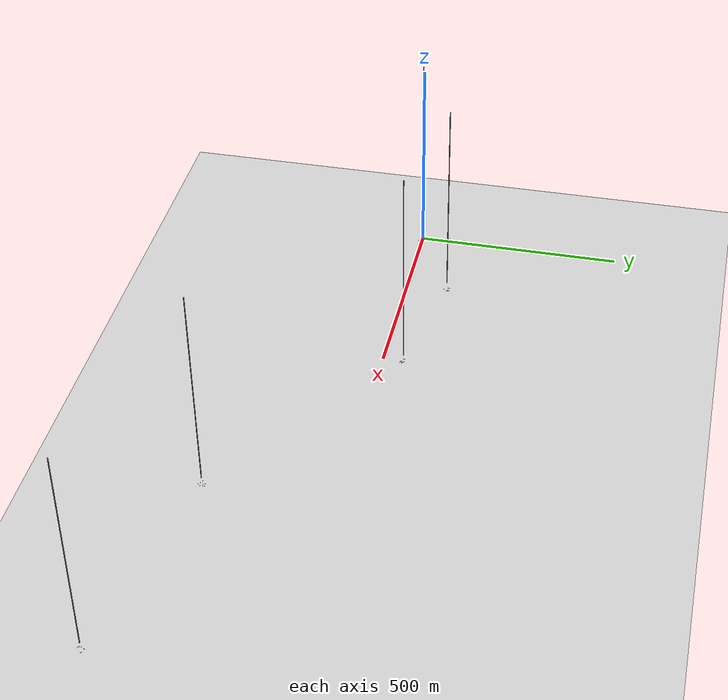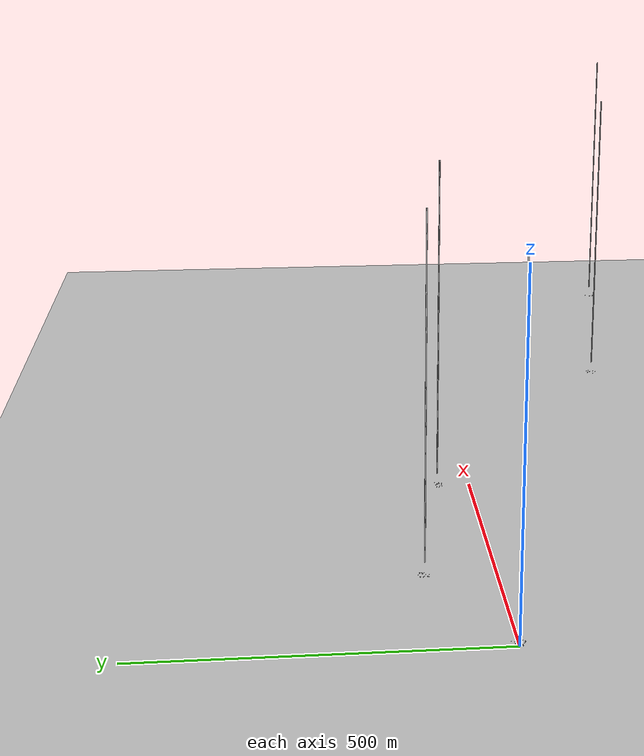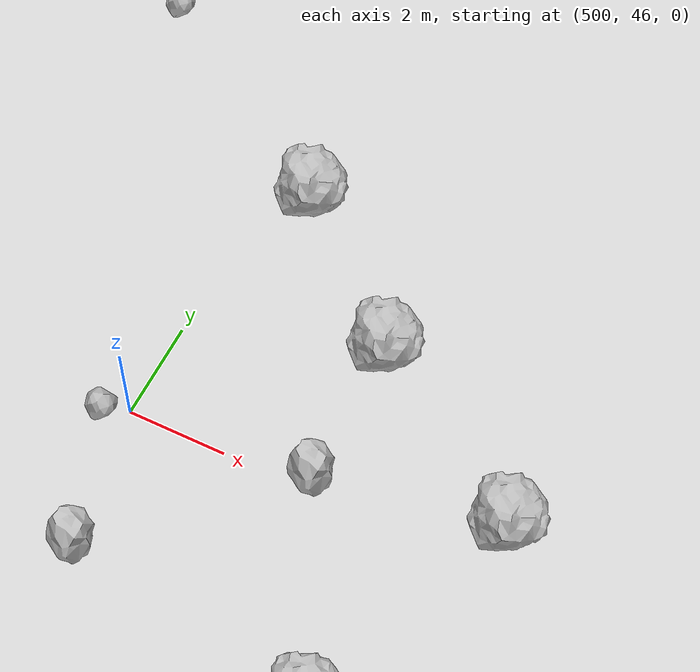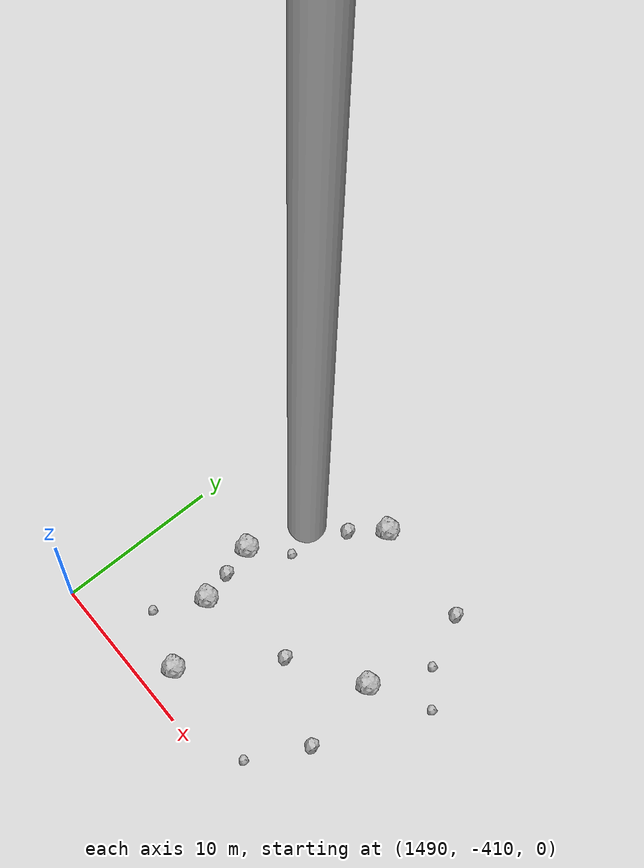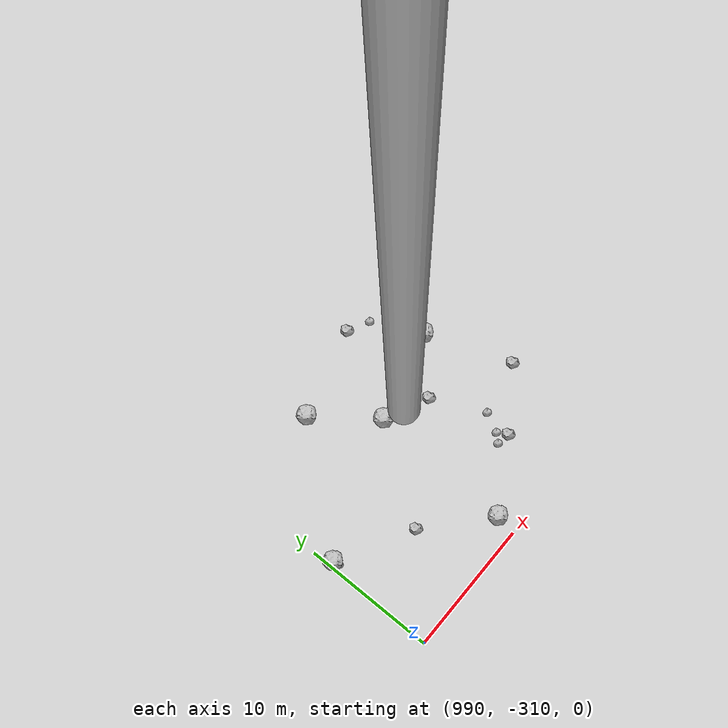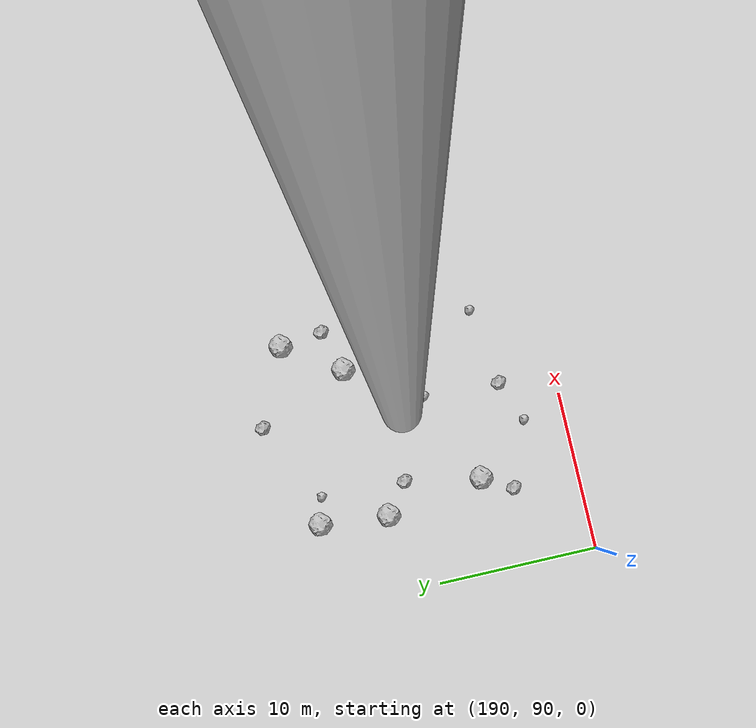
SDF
<?xml version="1.0" ?>
<sdf version="1.6">
  <world name="default">

    <include>
      <uri>model://custom_ground</uri>
    </include>

    <include>
      <uri>model://sun</uri>
    </include>

    <spherical_coordinates>
      <surface_model>EARTH_WGS84</surface_model>
      <latitude_deg>38.161479</latitude_deg>
      <longitude_deg>-122.454630</longitude_deg>
      <elevation>488.0</elevation>
      <heading_deg>90</heading_deg>
    </spherical_coordinates>

    <model name="rock1_0_0">
      <include>
        <uri>model://rock1</uri>
        <pose>4.195864942723206 -4.015646574560197 0.5 0 0 0</pose>
      </include>
    </model>
    <model name="rock1_0_1">
      <include>
        <uri>model://rock1</uri>
        <pose>12.803718802026863 2.9851479144451094 0.5 0 0 0</pose>
      </include>
    </model>
    <model name="rock1_0_2">
      <include>
        <uri>model://rock1</uri>
        <pose>0.9415964260700616 -4.209283556398273 0.5 0 0 0</pose>
      </include>
    </model>
    <model name="rock1_0_3">
      <include>
        <uri>model://rock1</uri>
        <pose>6.192674976511167 4.76048735637672 0.5 0 0 0</pose>
      </include>
    </model>
    <model name="rock1_0_4">
      <include>
        <uri>model://rock1</uri>
        <pose>10.939178341002336 -8.60777642291265 0.5 0 0 0</pose>
      </include>
    </model>
    <model name="rock2_0_0">
      <include>
        <uri>model://rock2</uri>
        <pose>4.516369171150312 -3.4928064324528307 0.3 0 0 0</pose>
      </include>
    </model>
    <model name="rock2_0_1">
      <include>
        <uri>model://rock2</uri>
        <pose>13.347055086547284 -8.61796494358993 0.3 0 0 0</pose>
      </include>
    </model>
    <model name="rock2_0_2">
      <include>
        <uri>model://rock2</uri>
        <pose>12.585462739103146 9.17562020129678 0.3 0 0 0</pose>
      </include>
    </model>
    <model name="rock2_0_3">
      <include>
        <uri>model://rock2</uri>
        <pose>6.986833521191771 -6.854568589557283 0.3 0 0 0</pose>
      </include>
    </model>
    <model name="rock2_0_4">
      <include>
        <uri>model://rock2</uri>
        <pose>16.184454660243567 2.5675210255791256 0.3 0 0 0</pose>
      </include>
    </model>
    <model name="rock3_0_0">
      <include>
        <uri>model://rock3</uri>
        <pose>17.30625434734882 -6.723371455480914 0.2 0 0 0</pose>
      </include>
    </model>
    <model name="rock3_0_1">
      <include>
        <uri>model://rock3</uri>
        <pose>11.016116951863445 5.068022940646797 0.2 0 0 0</pose>
      </include>
    </model>
    <model name="rock3_0_2">
      <include>
        <uri>model://rock3</uri>
        <pose>15.648106777702601 -0.05779453337871132 0.2 0 0 0</pose>
      </include>
    </model>
    <model name="rock3_0_3">
      <include>
        <uri>model://rock3</uri>
        <pose>15.263379086967825 -5.712907487984773 0.2 0 0 0</pose>
      </include>
    </model>
    <model name="rock3_0_4">
      <include>
        <uri>model://rock3</uri>
        <pose>12.260229367329895 3.1897227789043683 0.2 0 0 0</pose>
      </include>
    </model>
    <model name="rock1_1_0">
      <include>
        <uri>model://rock1</uri>
        <pose>206.81750389842085 106.43657643070316 0.5 0 0 0</pose>
      </include>
    </model>
    <model name="rock1_1_1">
      <include>
        <uri>model://rock1</uri>
        <pose>194.9439594139091 102.16787190971883 0.5 0 0 0</pose>
      </include>
    </model>
    <model name="rock1_1_2">
      <include>
        <uri>model://rock1</uri>
        <pose>195.9269548092256 96.00256539425688 0.5 0 0 0</pose>
      </include>
    </model>
    <model name="rock1_1_3">
      <include>
        <uri>model://rock1</uri>
        <pose>204.51083655407132 102.91834185649168 0.5 0 0 0</pose>
      </include>
    </model>
    <model name="rock1_1_4">
      <include>
        <uri>model://rock1</uri>
        <pose>195.3554667499169 106.46495690861477 0.5 0 0 0</pose>
      </include>
    </model>
    <model name="rock2_1_0">
      <include>
        <uri>model://rock2</uri>
        <pose>196.77825442721243 100.74407642350498 0.3 0 0 0</pose>
      </include>
    </model>
    <model name="rock2_1_1">
      <include>
        <uri>model://rock2</uri>
        <pose>194.83506438574017 94.14812350038979 0.3 0 0 0</pose>
      </include>
    </model>
    <model name="rock2_1_2">
      <include>
        <uri>model://rock2</uri>
        <pose>207.12182627328292 103.76982650468473 0.3 0 0 0</pose>
      </include>
    </model>
    <model name="rock2_1_3">
      <include>
        <uri>model://rock2</uri>
        <pose>202.029295915438 108.6788859412651 0.3 0 0 0</pose>
      </include>
    </model>
    <model name="rock2_1_4">
      <include>
        <uri>model://rock2</uri>
        <pose>201.49546061415637 93.58230779941908 0.3 0 0 0</pose>
      </include>
    </model>
    <model name="rock3_1_0">
      <include>
        <uri>model://rock3</uri>
        <pose>207.8756762420968 100.336696892147 0.2 0 0 0</pose>
      </include>
    </model>
    <model name="rock3_1_1">
      <include>
        <uri>model://rock3</uri>
        <pose>201.71047664122554 98.32907739842449 0.2 0 0 0</pose>
      </include>
    </model>
    <model name="rock3_1_2">
      <include>
        <uri>model://rock3</uri>
        <pose>198.8520107231225 92.53266321875478 0.2 0 0 0</pose>
      </include>
    </model>
    <model name="rock3_1_3">
      <include>
        <uri>model://rock3</uri>
        <pose>196.96902956053253 106.0155205097395 0.2 0 0 0</pose>
      </include>
    </model>
    <model name="rock3_1_4">
      <include>
        <uri>model://rock3</uri>
        <pose>206.36209070393375 94.30994392269382 0.2 0 0 0</pose>
      </include>
    </model>
    <model name="rock1_2_0">
      <include>
        <uri>model://rock1</uri>
        <pose>492.8478911344398 51.07484300557875 0.5 0 0 0</pose>
      </include>
    </model>
    <model name="rock1_2_1">
      <include>
        <uri>model://rock1</uri>
        <pose>507.34321998938674 46.94215572052766 0.5 0 0 0</pose>
      </include>
    </model>
    <model name="rock1_2_2">
      <include>
        <uri>model://rock1</uri>
        <pose>503.72025337798465 49.30005164428095 0.5 0 0 0</pose>
      </include>
    </model>
    <model name="rock1_2_3">
      <include>
        <uri>model://rock1</uri>
        <pose>500.8350533521295 51.833751647251276 0.5 0 0 0</pose>
      </include>
    </model>
    <model name="rock1_2_4">
      <include>
        <uri>model://rock1</uri>
        <pose>505.6558984122242 42.245917483375 0.5 0 0 0</pose>
      </include>
    </model>
    <model name="rock2_2_0">
      <include>
        <uri>model://rock2</uri>
        <pose>490.41702259472095 47.90881314695822 0.3 0 0 0</pose>
      </include>
    </model>
    <model name="rock2_2_1">
      <include>
        <uri>model://rock2</uri>
        <pose>503.64729088600546 46.36294726733669 0.3 0 0 0</pose>
      </include>
    </model>
    <model name="rock2_2_2">
      <include>
        <uri>model://rock2</uri>
        <pose>500.39753783577453 43.235566079968834 0.3 0 0 0</pose>
      </include>
    </model>
    <model name="rock2_2_3">
      <include>
        <uri>model://rock2</uri>
        <pose>509.17610691776457 52.87318242897869 0.3 0 0 0</pose>
      </include>
    </model>
    <model name="rock2_2_4">
      <include>
        <uri>model://rock2</uri>
        <pose>496.43257234771545 46.037055543576045 0.3 0 0 0</pose>
      </include>
    </model>
    <model name="rock3_2_0">
      <include>
        <uri>model://rock3</uri>
        <pose>499.4661210435613 45.81580041764853 0.2 0 0 0</pose>
      </include>
    </model>
    <model name="rock3_2_1">
      <include>
        <uri>model://rock3</uri>
        <pose>495.8002424766256 42.56363050745496 0.2 0 0 0</pose>
      </include>
    </model>
    <model name="rock3_2_2">
      <include>
        <uri>model://rock3</uri>
        <pose>496.07524374263784 54.9560841366461 0.2 0 0 0</pose>
      </include>
    </model>
    <model name="rock3_2_3">
      <include>
        <uri>model://rock3</uri>
        <pose>497.99767684023783 57.77246468843383 0.2 0 0 0</pose>
      </include>
    </model>
    <model name="rock3_2_4">
      <include>
        <uri>model://rock3</uri>
        <pose>492.9620140391342 48.37783842536463 0.2 0 0 0</pose>
      </include>
    </model>
    <model name="rock1_3_0">
      <include>
        <uri>model://rock1</uri>
        <pose>1000.5403229898156 -297.69798022240565 0.5 0 0 0</pose>
      </include>
    </model>
    <model name="rock1_3_1">
      <include>
        <uri>model://rock1</uri>
        <pose>1000.3125920129335 -308.3600485736929 0.5 0 0 0</pose>
      </include>
    </model>
    <model name="rock1_3_2">
      <include>
        <uri>model://rock1</uri>
        <pose>990.4581341784733 -301.39433388652867 0.5 0 0 0</pose>
      </include>
    </model>
    <model name="rock1_3_3">
      <include>
        <uri>model://rock1</uri>
        <pose>1007.0999129315585 -296.0049084521154 0.5 0 0 0</pose>
      </include>
    </model>
    <model name="rock1_3_4">
      <include>
        <uri>model://rock1</uri>
        <pose>997.2360921907235 -293.3338821583055 0.5 0 0 0</pose>
      </include>
    </model>
    <model name="rock2_3_0">
      <include>
        <uri>model://rock2</uri>
        <pose>1003.6970657160985 -299.245870154692 0.3 0 0 0</pose>
      </include>
    </model>
    <model name="rock2_3_1">
      <include>
        <uri>model://rock2</uri>
        <pose>1003.7342209574599 -291.652849807892 0.3 0 0 0</pose>
      </include>
    </model>
    <model name="rock2_3_2">
      <include>
        <uri>model://rock2</uri>
        <pose>1005.2539104084914 -305.27735099278414 0.3 0 0 0</pose>
      </include>
    </model>
    <model name="rock2_3_3">
      <include>
        <uri>model://rock2</uri>
        <pose>995.8847421535206 -304.4598356523077 0.3 0 0 0</pose>
      </include>
    </model>
    <model name="rock2_3_4">
      <include>
        <uri>model://rock2</uri>
        <pose>1009.4473766572728 -302.27008745455106 0.3 0 0 0</pose>
      </include>
    </model>
    <model name="rock3_3_0">
      <include>
        <uri>model://rock3</uri>
        <pose>1005.2544017655076 -292.51466409695934 0.2 0 0 0</pose>
      </include>
    </model>
    <model name="rock3_3_1">
      <include>
        <uri>model://rock3</uri>
        <pose>990.4653866499514 -301.8981395389102 0.2 0 0 0</pose>
      </include>
    </model>
    <model name="rock3_3_2">
      <include>
        <uri>model://rock3</uri>
        <pose>1005.4949466275472 -303.164541750924 0.2 0 0 0</pose>
      </include>
    </model>
    <model name="rock3_3_3">
      <include>
        <uri>model://rock3</uri>
        <pose>1004.8019132334273 -304.5717878074009 0.2 0 0 0</pose>
      </include>
    </model>
    <model name="rock3_3_4">
      <include>
        <uri>model://rock3</uri>
        <pose>1004.2706009250963 -305.1530969079186 0.2 0 0 0</pose>
      </include>
    </model>
    <model name="rock1_4_0">
      <include>
        <uri>model://rock1</uri>
        <pose>1495.3529715651805 -403.81601086109436 0.5 0 0 0</pose>
      </include>
    </model>
    <model name="rock1_4_1">
      <include>
        <uri>model://rock1</uri>
        <pose>1497.5356324859304 -408.0351560858751 0.5 0 0 0</pose>
      </include>
    </model>
    <model name="rock1_4_2">
      <include>
        <uri>model://rock1</uri>
        <pose>1505.5785847035258 -399.5803073930652 0.5 0 0 0</pose>
      </include>
    </model>
    <model name="rock1_4_3">
      <include>
        <uri>model://rock1</uri>
        <pose>1498.8791726691823 -392.57293329376097 0.5 0 0 0</pose>
      </include>
    </model>
    <model name="rock1_4_4">
      <include>
        <uri>model://rock1</uri>
        <pose>1494.387771692095 -399.9633467008032 0.5 0 0 0</pose>
      </include>
    </model>
    <model name="rock2_4_0">
      <include>
        <uri>model://rock2</uri>
        <pose>1497.3589312688753 -394.48768747694487 0.3 0 0 0</pose>
      </include>
    </model>
    <model name="rock2_4_1">
      <include>
        <uri>model://rock2</uri>
        <pose>1494.8551803849732 -401.9043548771757 0.3 0 0 0</pose>
      </include>
    </model>
    <model name="rock2_4_2">
      <include>
        <uri>model://rock2</uri>
        <pose>1501.157661140111 -402.39552162618713 0.3 0 0 0</pose>
      </include>
    </model>
    <model name="rock2_4_3">
      <include>
        <uri>model://rock2</uri>
        <pose>1505.5173097563675 -392.7084189610292 0.3 0 0 0</pose>
      </include>
    </model>
    <model name="rock2_4_4">
      <include>
        <uri>model://rock2</uri>
        <pose>1506.3471314523963 -404.50405059985565 0.3 0 0 0</pose>
      </include>
    </model>
    <model name="rock3_4_0">
      <include>
        <uri>model://rock3</uri>
        <pose>1507.0969108000068 -395.8764681072539 0.2 0 0 0</pose>
      </include>
    </model>
    <model name="rock3_4_1">
      <include>
        <uri>model://rock3</uri>
        <pose>1496.3534047074272 -398.0848001054502 0.2 0 0 0</pose>
      </include>
    </model>
    <model name="rock3_4_2">
      <include>
        <uri>model://rock3</uri>
        <pose>1509.1054076869852 -397.5822618341538 0.2 0 0 0</pose>
      </include>
    </model>
    <model name="rock3_4_3">
      <include>
        <uri>model://rock3</uri>
        <pose>1493.8951846835487 -406.84113570752106 0.2 0 0 0</pose>
      </include>
    </model>
    <model name="rock3_4_4">
      <include>
        <uri>model://rock3</uri>
        <pose>1504.499422639886 -408.21823890358195 0.2 0 0 0</pose>
      </include>
    </model>

    <model name="cylinder_1">
      <static>true</static>
      <link name="link">
        <visual name="visual">
          <geometry>
            <cylinder>
              <radius>1</radius>
              <length>500</length>
            </cylinder>
          </geometry>
        </visual>
      </link>
      <pose>10 0 270 0 0 0</pose>
    </model>

    <model name="cylinder_2">
      <static>true</static>
      <link name="link">
        <visual name="visual">
          <geometry>
            <cylinder>
              <radius>1</radius>
              <length>500</length>
            </cylinder>
          </geometry>
        </visual>
      </link>
      <pose>200 100 270 0 0 0</pose>
    </model>

    <model name="cylinder_3">
      <static>true</static>
      <link name="link">
        <visual name="visual">
          <geometry>
            <cylinder>
              <radius>1</radius>
              <length>500</length>
            </cylinder>
          </geometry>
        </visual>
      </link>
      <pose>500 50 270 0 0 0</pose>
    </model>

    <model name="cylinder_4">
      <static>true</static>
      <link name="link">
        <visual name="visual">
          <geometry>
            <cylinder>
              <radius>1</radius>
              <length>500</length>
            </cylinder>
          </geometry>
        </visual>
      </link>
      <pose>1000 -300 270 0 0 0</pose>
    </model>

    <model name="cylinder_5">
      <static>true</static>
      <link name="link">
        <visual name="visual">
          <geometry>
            <cylinder>
              <radius>1</radius>
              <length>500</length>
            </cylinder>
          </geometry>
        </visual>
      </link>
      <pose>1500 -400 270 0 0 0</pose>
    </model>

  </world>
</sdf>

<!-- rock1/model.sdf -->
<sdf version="1.6">
  <model name="rock1">
    <static>true</static> <!-- Set to true if the model should not move -->
    <pose>0 0 0 0 0 0</pose>

    <!--z offset is 0.5 for full scale-->

    <link name="link">
      <collision name="rock1_collision">
        <geometry>
          <mesh>
            <uri>model://meshes/rock1.dae</uri>
          </mesh>
        </geometry>
      </collision>
      <visual name="rock1_visual">
        <geometry>
          <mesh>
            <uri>model://meshes/rock1.dae</uri>
          </mesh>
        </geometry>
        <material>
          <script>
            <uri>model://materials/scripts/sand_pebbles.material</uri>
            <name>custom_ground/Image</name>
          </script>
        </material>
      </visual>
    </link>
  </model>
</sdf>

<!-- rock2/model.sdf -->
<sdf version="1.6">
  <model name="rock2">
    <static>true</static> <!-- Set to true if the model should not move -->
    <pose>0 0 0 0 0 0</pose>

    <!--z offset is 0.3 for full scale-->

    <link name="link">
      <collision name="rock2_collision">
        <geometry>
          <mesh>
            <uri>model://meshes/rock2.dae</uri>
          </mesh>
        </geometry>
      </collision>
      <visual name="rock2_visual">
        <geometry>
          <mesh>
            <uri>model://meshes/rock2.dae</uri>
          </mesh>
        </geometry>
        <material>
          <script>
            <uri>model://materials/scripts/sand_pebbles.material</uri>
            <name>custom_ground/Image</name>
          </script>
        </material>
      </visual>
    </link>
  </model>
</sdf>

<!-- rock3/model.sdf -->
<sdf version="1.6">
  <model name="rock3">
    <static>true</static> <!-- Set to true if the model should not move -->
    <pose>0 0 0 0 0 0</pose>

    <!--z offset is 0.2 for full scale-->

    <link name="link">
      <collision name="rock3_collision">
        <geometry>
          <mesh>
            <uri>model://meshes/rock3.dae</uri>
          </mesh>
        </geometry>
      </collision>
      <visual name="rock3_visual">
        <geometry>
          <mesh>
            <uri>model://meshes/rock3.dae</uri>
          </mesh>
        </geometry>
        <material>
          <script>
            <uri>model://materials/scripts/sand_pebbles.material</uri>
            <name>custom_ground/Image</name>
          </script>
        </material>
      </visual>
    </link>
  </model>
</sdf>

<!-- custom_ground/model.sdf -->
<sdf version="1.6">
  <model name="custom_ground">
    <static>true</static> <!-- Ground is static and immovable -->
    <link name="ground_link">
      <pose>240 0 0 0 0 0</pose> <!-- Position and orientation relative to the world -->
      <!-- Visual Representation -->
      <visual name="ground_visual">
        <geometry>
          <plane>
            <normal>0 0 1</normal> <!-- Upward facing plane -->
            <size>500 500</size> <!-- Size of the plane -->
          </plane>
        </geometry>
        <material>
          <script>
            <uri>model://materials/scripts/sand_pebbles.material</uri>
            <name>custom_ground/Image</name>
          </script>
        </material>
      </visual>

      <!-- Collision Representation -->
      <collision name="ground_collision">
        <geometry>
          <plane>
            <normal>0 0 1</normal>
            <size>100 100</size>
          </plane>
        </geometry>
      </collision>

    </link>
  </model>
</sdf>
